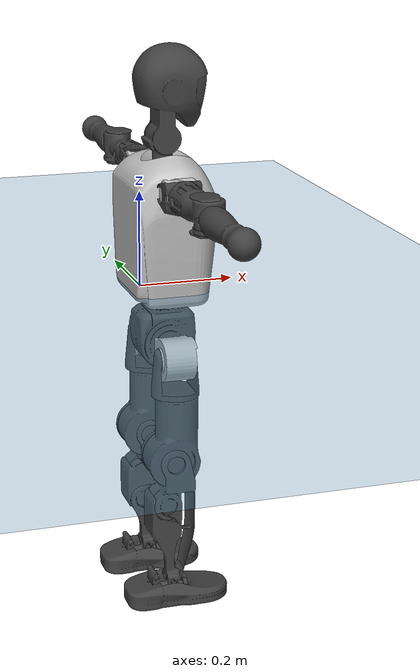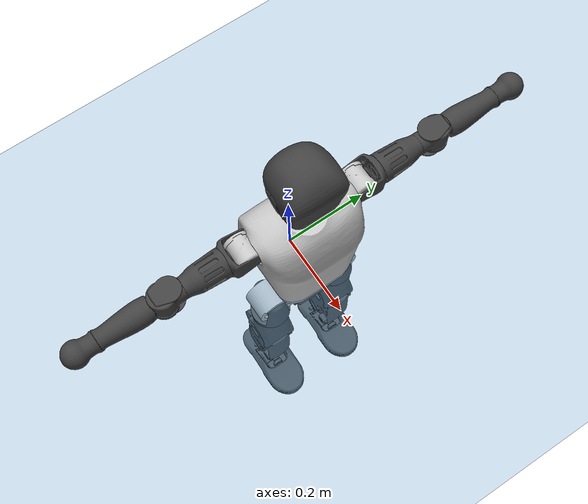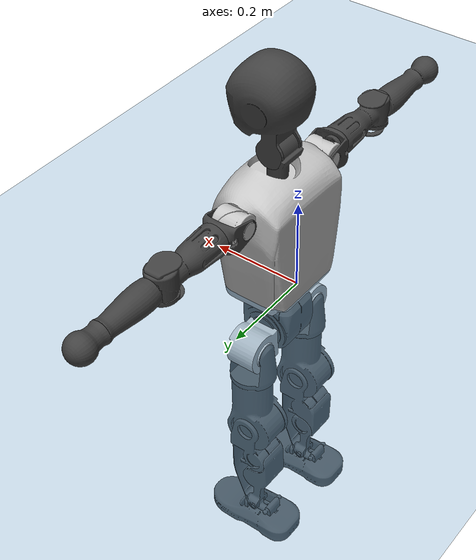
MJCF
<mujoco model="T1">
  <compiler angle="radian" assetdir="assets" balanceinertia="true" inertiafromgeom="false"/>

  <option timestep="0.005" density="1.2" viscosity="2e-05"/>

  <size nkey="1"/>

  <visual>
    <quality shadowsize="8192"/>
    <map shadowclip="0.5"/>
  </visual>

  <default>
    <default class="/">
      <joint armature="0.01" damping="0.01" frictionloss="0.1"/>
      <geom contype="0" conaffinity="0" group="1" solref="-1000 -80"/>
      <site size="0.01 0.005 0.005" group="5"/>
      <general forcelimited="true" biastype="affine" gainprm="25" biasprm="0 -25 -0.6"/>
      <default class="t1">
        <geom rgba="0.25 0.25 0.25 1"/>
        <default class="visual">
          <geom type="mesh" group="2"/>
        </default>
        <default class="collision">
          <geom group="3"/>
        </default>
        <default class="foot">
          <geom size="0.1115 0.05 0.015" type="box" condim="6" group="4" priority="1" solimp="0.015 1 0.015"/>
        </default>
        <default class="reward_collision_sphere">
          <geom group="5" rgba="1 0 0 1"/>
        </default>
      </default>
    </default>
  </default>

  <asset>
    <texture type="skybox" colorspace="auto" name="//unnamed_texture_0" builtin="gradient" rgb1="0.95 0.95 0.95" rgb2="0.95 0.95 0.95" width="100" height="600"/>
    <texture type="2d" colorspace="auto" name="texplane" builtin="checker" rgb1="0.345 0.575 0.748" rgb2="0.345 0.575 0.748" markrgb="1 1 1" width="512" height="512"/>
    <material name="MatPlane" class="/" texture="texplane" texuniform="true" texrepeat="2 2" specular="0.9"/>
    <mesh name="Trunk" class="/" file="Trunk.stl"/>
    <mesh name="H1" class="/" file="H1.stl"/>
    <mesh name="H2" class="/" file="H2.stl"/>
    <mesh name="AL1" class="/" file="AL1.stl"/>
    <mesh name="AL2" class="/" file="AL2.stl"/>
    <mesh name="AL3" class="/" file="AL3.stl"/>
    <mesh name="left_hand_link" class="/" file="left_hand_link.stl"/>
    <mesh name="AR1" class="/" file="AR1.stl"/>
    <mesh name="AR2" class="/" file="AR2.stl"/>
    <mesh name="AR3" class="/" file="AR3.stl"/>
    <mesh name="right_hand_link" class="/" file="right_hand_link.stl"/>
    <mesh name="Waist" class="/" file="Waist.stl"/>
    <mesh name="Hip_Pitch_Left" class="/" file="Hip_Pitch_Left.stl"/>
    <mesh name="Hip_Roll_Left" class="/" file="Hip_Roll_Left.stl"/>
    <mesh name="Hip_Yaw_Left" class="/" file="Hip_Yaw_Left.stl"/>
    <mesh name="Shank_Left" class="/" file="Shank_Left.stl"/>
    <mesh name="Ankle_Cross_Left" class="/" file="Ankle_Cross_Left.stl"/>
    <mesh name="left_foot_link" class="/" file="left_foot_link.stl"/>
    <mesh name="Hip_Pitch_Right" class="/" file="Hip_Pitch_Right.stl"/>
    <mesh name="Hip_Roll_Right" class="/" file="Hip_Roll_Right.stl"/>
    <mesh name="Hip_Yaw_Right" class="/" file="Hip_Yaw_Right.stl"/>
    <mesh name="Shank_Right" class="/" file="Shank_Right.stl"/>
    <mesh name="Ankle_Cross_Right" class="/" file="Ankle_Cross_Right.stl"/>
    <mesh name="right_foot_link" class="/" file="right_foot_link.stl"/>
  </asset>

  <worldbody>
    <geom name="floor" class="/" size="100 100 0.125" type="plane" group="0" material="MatPlane"/>
    <light name="toplight_shadow" class="/" pos="0 0 5" dir="0.0990148 0.0990148 -0.990148" type="directional" ambient="0.04 0.04 0.04" diffuse="0.55 0.55 0.55" specular="0.12 0.12 0.12"/>
    <light name="toplight_fill" class="/" pos="0 0 5" dir="0.0990148 0.0990148 -0.990148" type="directional" castshadow="false" ambient="0.04 0.04 0.04" diffuse="0.3 0.3 0.3" specular="0.08 0.08 0.08"/>
    <body name="trunk" childclass="t1" pos="-0.000518564 -7.30575e-05 0.00149938" quat="1 3.88902e-05 -0.000107908 -6.63564e-05">
      <inertial pos="0.0432626 -0.00120993 0.10732" quat="0.999963 0.000946504 -0.00843594 -0.00163556" mass="8.09747" diaginertia="0.0274835 0.0400692 0.0569904"/>
      <joint name="//unnamed_joint_0" type="free" armature="0" damping="0" frictionloss="0"/>
      <geom name="//unnamed_geom_1" class="visual" rgba="0.76 0.76 0.76 1" mesh="Trunk"/>
      <geom name="//unnamed_geom_2" class="collision" size="0.0670541 0.0894055 0.134108" pos="0.0473619 0 0.12162" type="box"/>
      <geom name="//unnamed_geom_3" class="reward_collision_sphere" size="0.102816" pos="0.0473619 0 0.10135"/>
      <geom name="//unnamed_geom_4" class="reward_collision_sphere" size="0.0134108" pos="0.0473619 0.0747404 0"/>
      <geom name="//unnamed_geom_5" class="reward_collision_sphere" size="0.0134108" pos="0.0473619 -0.0747404 0"/>
      <geom name="//unnamed_geom_6" class="reward_collision_sphere" size="0.0134108" pos="0.0473619 0.094085 0.18243"/>
      <geom name="//unnamed_geom_7" class="reward_collision_sphere" size="0.0134108" pos="0.0473619 -0.094085 0.18243"/>
      <site name="imu" pos="0.0123296 -0.0101279 -0.00399298" size="0.00894055"/>
      <camera name="track" pos="0 -1.7586 0" quat="0.707107 0.707107 0 0" mode="trackcom"/>
      <camera name="ego_camera" pos="0.0963026 0 0.42567" quat="-0.5 -0.5 0.5 0.5"/>
      <body name="H1" pos="0.0494654 -0.000611762 0.24654" quat="1 9.14215e-05 2.28516e-05 6.67404e-06">
        <inertial pos="-0.000367976 -0.000729739 0.0587816" quat="0.762427 -0.00923536 -0.000556776 0.647008" mass="0.321537" diaginertia="7.60332e-05 0.000117554 0.000164265"/>
        <joint name="AAHead_yaw" pos="0 0 0" axis="0.00124515 0.000843711 0.999999" stiffness="0.00913174" range="-1.58626 1.57758" armature="0.00861758" damping="0.00518181" frictionloss="0.0938253"/>
        <geom name="//unnamed_geom_8" class="visual" mesh="H1"/>
        <body name="H2" pos="-0.000582294 -0.00238336 0.0624394" quat="1 1.26464e-05 9.93374e-06 -2.20304e-05">
          <inertial pos="0.00782522 0.00301955 0.100374" quat="0.988748 0.107537 -0.0735392 -0.0735153" mass="0.467136" diaginertia="0.000619591 0.00102993 0.00185569"/>
          <joint name="Head_pitch" pos="0 0 0" axis="0.0036524 -0.999989 0.00282403" range="-1.22284 0.364038" armature="0.00809441" damping="0.00413422" frictionloss="0.0889755"/>
          <geom name="//unnamed_geom_9" class="visual" mesh="H2"/>
          <geom name="//unnamed_geom_10" class="collision" size="0.0715244" pos="0.00789366 0 0.111485"/>
          <geom name="//unnamed_geom_11" class="reward_collision_sphere" size="0.080465" pos="0.0157873 0 0.10135"/>
        </body>
      </body>
      <body name="AL1" pos="0.0461445 0.0949049 0.222183" quat="1 0.000124394 0.000294012 0.000269965">
        <inertial pos="-0.00133315 0.0388002 0.00215975" quat="0.50474 0.496426 -0.503902 0.494855" mass="0.381494" diaginertia="0.000419645 0.00067671 0.000309251"/>
        <joint name="Left_Shoulder_Pitch" pos="0 0 0" axis="0.00354986 0.999982 -0.00493131" range="-3.35096 1.20685" armature="0.0086541" damping="0.0106245" frictionloss="0.0884722"/>
        <geom name="//unnamed_geom_12" class="visual" rgba="0.76 0.76 0.76 1" mesh="AL1"/>
        <body name="AL2" pos="-0.000142218 0.0446619 -0.00115187" quat="0.999999 1.65203e-05 0.0013168 -0.000366386">
          <inertial pos="0.0020077 0.0330622 -0.00146953" quat="0.488048 0.511322 -0.487645 0.512407" mass="0.121285" diaginertia="0.000125571 0.000190088 0.000195532"/>
          <joint name="Left_Shoulder_Roll" pos="0 0 0" axis="-0.999987 -0.00271054 -0.00427413" range="-1.58488 1.74154" armature="0.00880275" damping="0" frictionloss="0.0937476"/>
          <geom name="//unnamed_geom_13" class="visual" mesh="AL2"/>
          <body name="AL3" pos="0.00114087 0.0560184 0.00110234" quat="0.999999 0.000376622 -0.000764385 0.00073979">
            <inertial pos="-0.000151394 0.0755576 -0.00038367" quat="0.708514 0.705653 -0.00437108 0.00656768" mass="0.74945" diaginertia="0.00402655 0.00695776 0.000686034"/>
            <joint name="Left_Elbow_Pitch" pos="0 0 0" axis="-0.000616828 -1 0.000656368" range="-2.26305 2.26868" armature="0.00911482" damping="0.012586" frictionloss="0.0889418"/>
            <geom name="//unnamed_geom_14" class="visual" mesh="AL3"/>
            <geom name="//unnamed_geom_15" class="collision" size="0.0268217 0.0670541" pos="0 0.043965 0" quat="0.707105 0.707108 0 0" type="cylinder"/>
            <geom name="//unnamed_geom_16" class="reward_collision_sphere" size="0.032186"/>
            <body name="left_hand_link" pos="0.000110134 0.132213 0.00165221" quat="0.999999 -0.000818677 0.000654562 -0.000461445">
              <inertial pos="-0.000439484 0.0969613 -0.00159563" quat="0.709986 0.704145 -0.00985908 -0.00154604" mass="0.226677" diaginertia="0.00241379 0.00415135 0.000223796"/>
              <joint name="Left_Elbow_Yaw" pos="0 0 0" axis="-0.012105 -0.00365139 0.99992" range="-2.4394 0.0273361" armature="0.00902647" damping="0.00743402" frictionloss="0.100397"/>
              <geom name="//unnamed_geom_17" class="visual" mesh="left_hand_link"/>
              <geom name="//unnamed_geom_18" class="collision" size="0.0268217 0.0782298" pos="0 0.114309 0" quat="0.707105 0.707108 0 0" type="cylinder"/>
              <geom name="//unnamed_geom_19" class="reward_collision_sphere" size="0.0447028"/>
              <geom name="//unnamed_geom_20" class="reward_collision_sphere" size="0.0312919" pos="0 0.0967229 0"/>
              <geom name="//unnamed_geom_21" class="reward_collision_sphere" size="0.0312919" pos="0 0.189049 0"/>
            </body>
          </body>
        </body>
      </body>
      <body name="AR1" pos="0.0430979 -0.0912079 0.221772" quat="1 0.000117734 0.000406819 -0.000216119">
        <inertial pos="-0.00041831 -0.0389708 -0.000158806" quat="0.502912 0.495028 -0.503991 0.498016" mass="0.374992" diaginertia="0.000419355 0.000684218 0.000310431"/>
        <joint name="Right_Shoulder_Pitch" pos="0 0 0" axis="0.000156476 -0.999997 0.00228683" stiffness="0.0144937" range="-1.1808 3.31366" armature="0.00878084" damping="0.0169595" frictionloss="0.0888741"/>
        <geom name="//unnamed_geom_22" class="visual" rgba="0.76 0.76 0.76 1" mesh="AR1"/>
        <body name="AR2" pos="-0.002558 -0.0388885 0.000399122" quat="1 -4.84425e-06 1.58123e-05 1.30361e-05">
          <inertial pos="0.0025628 -0.0342593 -0.000553453" quat="0.511454 0.487835 -0.51208 0.488063" mass="0.112863" diaginertia="0.000118286 0.000173928 0.000189065"/>
          <joint name="Right_Shoulder_Roll" pos="0 0 0" axis="-0.999991 -0.000537566 0.00410709" stiffness="0.00462072" range="-1.7441 1.52608" armature="0.00894506" damping="0.00424727" frictionloss="0.0797196"/>
          <geom name="//unnamed_geom_23" class="visual" mesh="AR2"/>
          <body name="AR3" pos="-2.57359e-05 -0.0507765 0.00169087" quat="1 7.36563e-05 1.93968e-05 8.87088e-05">
            <inertial pos="-0.000391069 -0.0740948 -0.000526666" quat="0.71409 0.699998 0.00635322 0.00610906" mass="0.731351" diaginertia="0.00395427 0.00677514 0.000671312"/>
            <joint name="Right_Elbow_Pitch" pos="0 0 0" axis="0.0016399 0.999999 -0.000148537" stiffness="0.00974659" range="-2.27017 2.27461" armature="0.00909756" damping="0.00917203" frictionloss="0.0998146"/>
            <geom name="//unnamed_geom_24" class="visual" mesh="AR3"/>
            <geom name="//unnamed_geom_25" class="collision" size="0.0268217 0.0670541" pos="0 -0.043965 0" quat="0.707105 0.707108 0 0" type="cylinder"/>
            <geom name="//unnamed_geom_26" class="reward_collision_sphere" size="0.032186"/>
            <body name="right_hand_link" pos="-0.00239498 -0.129238 -0.00152958" quat="1 1.08008e-05 1.16898e-05 -2.74195e-05">
              <inertial pos="-0.000890142 -0.0960884 0.0030266" quat="0.698973 0.715145 0.00135301 -0.00180018" mass="0.225796" diaginertia="0.00240767 0.00414138 0.000222337"/>
              <joint name="Right_Elbow_Yaw" pos="0 0 0" axis="0.000761292 -0.00115875 0.999999" range="-0.032688 2.42409" armature="0.0101487" damping="0.00555465" frictionloss="0.0887258"/>
              <geom name="//unnamed_geom_27" class="visual" mesh="right_hand_link"/>
              <geom name="//unnamed_geom_28" class="collision" size="0.0268217 0.0782298" pos="0 -0.114309 0" quat="0.707105 0.707108 0 0" type="cylinder"/>
              <geom name="//unnamed_geom_29" class="reward_collision_sphere" size="0.0447028"/>
              <geom name="//unnamed_geom_30" class="reward_collision_sphere" size="0.0312919" pos="0 -0.0967229 0"/>
              <geom name="//unnamed_geom_31" class="reward_collision_sphere" size="0.0312919" pos="0 -0.189049 0"/>
            </body>
          </body>
        </body>
      </body>
      <body name="Waist" pos="0.0494625 -0.0022166 -0.118396" quat="1 1.85158e-06 -1.58983e-05 -1.74214e-06">
        <inertial pos="0.00369596 -0.000282263 0.00753685" quat="0.983886 0.00054591 -0.178797 -0.000146502" mass="1.82433" diaginertia="0.00161161 0.00265354 0.00495421"/>
        <joint name="Waist" pos="0 0 0" axis="0.00224241 -0.0042249 0.999989" range="-1.52124 1.55594" armature="0.00818017" damping="0.0103252" frictionloss="0.0880392"/>
        <geom name="//unnamed_geom_32" class="visual" mesh="Waist"/>
        <body name="Hip_Pitch_Left" pos="-0.00156852 0.0944362 -0.000286827" quat="0.999999 0.00098268 0.000404968 -1.69231e-06">
          <inertial pos="0.000545712 -0.00423549 -0.0185731" quat="0.975264 0.220652 0.0129867 0.00201143" mass="0.730931" diaginertia="0.000549194 0.000786126 0.00132625"/>
          <joint name="Left_Hip_Pitch" pos="0 0 0" axis="0.00132244 0.999999 -0.00094852" stiffness="0.00372032" range="-1.79303 1.58431" armature="0.00888116" damping="0.00712167" frictionloss="0.0892971"/>
          <geom name="//unnamed_geom_33" class="visual" rgba="0.76 0.76 0.76 1" mesh="Hip_Pitch_Left"/>
          <body name="Hip_Roll_Left" pos="-0.000285154 0.000185295 -0.0206291" quat="1 0.000413702 0.000523899 0.000337794">
            <inertial pos="0.00169189 0.000219114 -0.0532444" quat="0.707059 -0.00597742 -0.00599012 0.707104" mass="0.276381" diaginertia="0.000531651 0.000778603 0.000538311"/>
            <joint name="Left_Hip_Roll" pos="0 0 0" axis="-0.999997 -0.00185208 -0.00140529" range="-1.58806 0.221542" armature="0.00905381" damping="0.00892598" frictionloss="0.0961739"/>
            <geom name="//unnamed_geom_34" class="visual" mesh="Hip_Roll_Left"/>
            <geom name="//unnamed_geom_35" class="reward_collision_sphere" size="0.049173"/>
            <body name="Hip_Yaw_Left" pos="0.00165009 -0.00122672 -0.0842958" quat="1 -0.000112192 -4.56816e-05 9.791e-05">
              <inertial pos="-0.00485785 -0.000152254 -0.0908774" quat="0.703967 -0.0268424 -0.0295397 0.70911" mass="1.55729" diaginertia="0.00788592 0.0128996 0.00276969"/>
              <joint name="Left_Hip_Yaw" pos="0 0 0" axis="-0.00282399 0.00676132 -0.999973" range="-1.00512 1.00177" armature="0.00905629" damping="0.0167166" frictionloss="0.0890856"/>
              <geom name="//unnamed_geom_36" class="visual" mesh="Hip_Yaw_Left"/>
              <geom name="//unnamed_geom_37" class="collision" size="0.0447028 0.0715244" type="cylinder"/>
              <body name="Shank_Left" pos="-0.00959557 0.000490387 -0.136042" quat="1 -4.62943e-06 -4.35912e-08 -9.91953e-07">
                <inertial pos="-0.00493361 -0.000295259 -0.125407" quat="0.997905 0.00218725 -0.026699 0.0588866" mass="1.22507" diaginertia="0.0106472 0.0183031 0.00198754"/>
                <joint name="Left_Knee_Pitch" pos="0 0 0" axis="0.00067455 0.999993 0.00365404" range="-0.0173457 2.33454" armature="0.00857013" damping="0.00910673" frictionloss="0.0979006"/>
                <geom name="//unnamed_geom_38" class="visual" mesh="Shank_Left"/>
                <geom name="//unnamed_geom_39" class="collision" size="0.0447028 0.0670541" pos="0 0 -0.12162" type="cylinder"/>
                <geom name="//unnamed_geom_40" class="reward_collision_sphere" size="0.0581136"/>
                <body name="Ankle_Cross_Left" pos="-0.000795117 1.42611e-05 -0.285001" quat="1 7.28025e-05 1.33479e-05 8.01637e-05">
                  <inertial pos="-0.0027253 -3.41833e-05 -0.0106406" quat="0.442291 0.547645 0.554109 0.444327" mass="0.0533677" diaginertia="9.34642e-06 1.37061e-05 1.24184e-05"/>
                  <joint name="Left_Ankle_Pitch" pos="0 0 0" axis="-0.000235282 1 -4.29468e-05" stiffness="0.00235789" range="-0.919103 0.35318" armature="0.0090151" damping="0.00407455" frictionloss="0.098372"/>
                  <geom name="//unnamed_geom_41" class="visual" mesh="Ankle_Cross_Left"/>
                  <body name="left_foot_link" pos="0.000583919 5.30906e-05 -0.01523" quat="1 -0.000105518 -8.6695e-05 -0.000397418">
                    <inertial pos="0.00069878 -0.00220021 -0.00997079" quat="-0.00119062 0.621296 -2.36992e-05 0.783575" mass="0.490498" diaginertia="0.00083315 0.00124823 0.0023021"/>
                    <joint name="Left_Ankle_Roll" pos="0 0 0" axis="-0.999998 -0.000339182 -0.00205523" range="-0.453425 0.456721" armature="0.00903363" damping="0.0149578" frictionloss="0.090252"/>
                    <geom name="//unnamed_geom_42" class="visual" mesh="left_foot_link"/>
                    <geom name="left_foot" class="foot" size="0.101424 0.0484499 0.013755" pos="0.00789366 0 -0.0152025"/>
                    <geom name="//unnamed_geom_44" class="reward_collision_sphere" size="0.0464909" pos="0.00789366 0 -0.0152025"/>
                    <geom name="//unnamed_geom_45" class="reward_collision_sphere" size="0.0268217" pos="0.0749897 -0.0202239 -0.0152025"/>
                    <geom name="//unnamed_geom_46" class="reward_collision_sphere" size="0.0268217" pos="-0.0552556 -0.0202239 -0.0152025"/>
                    <site name="left_foot" class="foot" pos="0.00789366 0 -0.0152025" size="0.00894055"/>
                  </body>
                </body>
              </body>
            </body>
          </body>
        </body>
        <body name="Hip_Pitch_Right" pos="0.0019587 -0.0923995 0.00131723" quat="1 6.11111e-05 -0.000317634 0.0003171">
          <inertial pos="0.000237699 0.00554959 -0.0157278" quat="0.973261 -0.228513 0.0233412 -0.000265069" mass="0.719752" diaginertia="0.000546559 0.000757309 0.00134321"/>
          <joint name="Right_Hip_Pitch" pos="0 0 0" axis="6.19721e-05 -0.999983 -0.00580389" range="-1.56655 1.79108" armature="0.00968394" damping="0.0124446" frictionloss="0.0897275"/>
          <geom name="//unnamed_geom_47" class="visual" rgba="0.76 0.76 0.76 1" mesh="Hip_Pitch_Right"/>
          <body name="Hip_Roll_Right" pos="8.60684e-06 0.000522311 -0.0200812" quat="0.999999 -0.000185419 0.00109475 -0.000836894">
            <inertial pos="0.00374535 -0.000983082 -0.0551605" quat="0.703693 -0.0118986 -0.00763741 0.710363" mass="0.270654" diaginertia="0.000519992 0.000775929 0.000543481"/>
            <joint name="Right_Hip_Roll" pos="0 0 0" axis="-0.999987 -0.00343209 -0.00378351" range="-0.206734 1.60272" armature="0.0091686" damping="0.00466604" frictionloss="0.0889911"/>
            <geom name="//unnamed_geom_48" class="visual" mesh="Hip_Roll_Right"/>
            <geom name="//unnamed_geom_49" class="reward_collision_sphere" size="0.049173"/>
            <body name="Hip_Yaw_Right" pos="0.000748415 -0.00122467 -0.0826237" quat="0.999999 -0.000715613 -0.000868527 0.000693013">
              <inertial pos="-0.00472754 0.000188297 -0.0914588" quat="0.715846 -0.029729 -0.0359365 0.696698" mass="1.57318" diaginertia="0.00831876 0.0140892 0.00283566"/>
              <joint name="Right_Hip_Yaw" pos="0 0 0" axis="-0.000470102 -0.000778693 -1" range="-1.00616 0.957451" armature="0.00909752" damping="0.0131055" frictionloss="0.079693"/>
              <geom name="//unnamed_geom_50" class="visual" mesh="Hip_Yaw_Right"/>
              <geom name="//unnamed_geom_51" class="collision" size="0.0447028 0.0715244" type="cylinder"/>
              <body name="Shank_Right" pos="-0.0128124 0.000312037 -0.136122" quat="1 1.41359e-07 0.000217413 -0.000944871">
                <inertial pos="-0.00281864 -8.9543e-05 -0.123625" quat="0.999261 -0.000119101 -0.0235484 -0.0303791" mass="1.32283" diaginertia="0.0108436 0.0179743 0.00207188"/>
                <joint name="Right_Knee_Pitch" pos="0 0 0" axis="-0.00341389 -0.999992 0.00203823" range="-2.31797 0.0100653" armature="0.00917554" damping="0.0099201" frictionloss="0.0865709"/>
                <geom name="//unnamed_geom_52" class="visual" mesh="Shank_Right"/>
                <geom name="//unnamed_geom_53" class="collision" size="0.0447028 0.0670541" pos="0 0 -0.12162" type="cylinder"/>
                <geom name="//unnamed_geom_54" class="reward_collision_sphere" size="0.0581136"/>
                <body name="Ankle_Cross_Right" pos="0.00164792 0.000226099 -0.284812" quat="0.999999 -0.000791343 -0.000151711 -0.00067323">
                  <inertial pos="-0.00306159 -0.00016214 -0.00792532" quat="0.44564 0.551784 0.549599 0.441453" mass="0.050178" diaginertia="8.76303e-06 1.33126e-05 1.19639e-05"/>
                  <joint name="Right_Ankle_Pitch" pos="0 0 0" axis="-0.00757293 -0.999906 0.0113888" range="-0.348403 0.849906" armature="0.00962744" damping="0.00272405" frictionloss="0.0782935"/>
                  <geom name="//unnamed_geom_55" class="visual" mesh="Ankle_Cross_Right"/>
                  <body name="right_foot_link" pos="0.00182107 -0.00149705 -0.0119568" quat="1 -8.501e-06 -4.71807e-06 1.24839e-05">
                    <inertial pos="-0.00104923 -0.000734449 -0.0110917" quat="-5.65431e-05 0.621347 -0.000674946 0.783535" mass="0.495474" diaginertia="0.000810209 0.00124327 0.00232948"/>
                    <joint name="Right_Ankle_Roll" pos="0 0 0" axis="-0.999954 0.00651931 -0.00703226" range="-0.388474 0.432181" armature="0.00832955" damping="0.00844624" frictionloss="0.0911942"/>
                    <geom name="//unnamed_geom_56" class="visual" mesh="right_foot_link"/>
                    <geom name="right_foot" class="foot" size="0.0925008 0.0451958 0.0136503" pos="0.00789366 0 -0.0152025"/>
                    <geom name="//unnamed_geom_58" class="reward_collision_sphere" size="0.0357622"/>
                    <geom name="//unnamed_geom_59" class="reward_collision_sphere" size="0.0268217" pos="0.00789366 0 -0.0152025"/>
                    <geom name="//unnamed_geom_60" class="reward_collision_sphere" size="0.0268217" pos="0.0749897 0.0202239 -0.0152025"/>
                    <geom name="//unnamed_geom_61" class="reward_collision_sphere" size="0.0268217" pos="-0.0552556 0.0202239 -0.0152025"/>
                    <site name="right_foot" class="foot" pos="0.00789366 0 -0.0152025" size="0.00894055"/>
                  </body>
                </body>
              </body>
            </body>
          </body>
        </body>
      </body>
    </body>
  </worldbody>

  <contact>
    <pair class="/" geom1="floor" geom2="left_foot" name="//unnamed_contact_0"/>
    <pair class="/" geom1="floor" geom2="right_foot" name="//unnamed_contact_1"/>
  </contact>

  <actuator>
    <general name="AAHead_yaw" class="/" joint="AAHead_yaw" forcerange="-6.36479 6.36479" gainprm="23.259" biasprm="0 -23.259 -0.512432"/>
    <general name="Head_pitch" class="/" joint="Head_pitch" forcerange="-6.26806 6.26806" gainprm="23.259" biasprm="0 -23.259 -0.512432"/>
    <general name="Left_Shoulder_Pitch" class="/" joint="Left_Shoulder_Pitch" forcerange="-16.0679 16.0679" gainprm="23.259" biasprm="0 -23.259 -0.512432"/>
    <general name="Left_Shoulder_Roll" class="/" joint="Left_Shoulder_Roll" forcerange="-16.1651 16.1651" gainprm="23.259" biasprm="0 -23.259 -0.512432"/>
    <general name="Left_Elbow_Pitch" class="/" joint="Left_Elbow_Pitch" forcerange="-17.2383 17.2383" gainprm="23.259" biasprm="0 -23.259 -0.512432"/>
    <general name="Left_Elbow_Yaw" class="/" joint="Left_Elbow_Yaw" forcerange="-16.4509 16.4509" gainprm="23.259" biasprm="0 -23.259 -0.512432"/>
    <general name="Right_Shoulder_Pitch" class="/" joint="Right_Shoulder_Pitch" forcerange="-16.4677 16.4677" gainprm="23.259" biasprm="0 -23.259 -0.512432"/>
    <general name="Right_Shoulder_Roll" class="/" joint="Right_Shoulder_Roll" forcerange="-16.1249 16.1249" gainprm="23.259" biasprm="0 -23.259 -0.512432"/>
    <general name="Right_Elbow_Pitch" class="/" joint="Right_Elbow_Pitch" forcerange="-16.7165 16.7165" gainprm="23.259" biasprm="0 -23.259 -0.512432"/>
    <general name="Right_Elbow_Yaw" class="/" joint="Right_Elbow_Yaw" forcerange="-17.1371 17.1371" gainprm="23.259" biasprm="0 -23.259 -0.512432"/>
    <general name="Waist" class="/" joint="Waist" forcerange="-26.516 26.516" gainprm="23.259" biasprm="0 -23.259 -0.512432"/>
    <general name="Left_Hip_Pitch" class="/" joint="Left_Hip_Pitch" forcerange="-36.3596 36.3596" gainprm="23.259" biasprm="0 -23.259 -0.512432"/>
    <general name="Left_Hip_Roll" class="/" joint="Left_Hip_Roll" forcerange="-26.0517 26.0517" gainprm="23.259" biasprm="0 -23.259 -0.512432"/>
    <general name="Left_Hip_Yaw" class="/" joint="Left_Hip_Yaw" forcerange="-25.7806 25.7806" gainprm="23.259" biasprm="0 -23.259 -0.512432"/>
    <general name="Left_Knee_Pitch" class="/" joint="Left_Knee_Pitch" forcerange="-57.0157 57.0157" gainprm="23.259" biasprm="0 -23.259 -0.512432"/>
    <general name="Left_Ankle_Pitch" class="/" joint="Left_Ankle_Pitch" forcerange="-17.5878 17.5878" gainprm="23.259" biasprm="0 -23.259 -0.512432"/>
    <general name="Left_Ankle_Roll" class="/" joint="Left_Ankle_Roll" forcerange="-13.392 13.392" gainprm="23.259" biasprm="0 -23.259 -0.512432"/>
    <general name="Right_Hip_Pitch" class="/" joint="Right_Hip_Pitch" forcerange="-43.7941 43.7941" gainprm="23.259" biasprm="0 -23.259 -0.512432"/>
    <general name="Right_Hip_Roll" class="/" joint="Right_Hip_Roll" forcerange="-25.8972 25.8972" gainprm="23.259" biasprm="0 -23.259 -0.512432"/>
    <general name="Right_Hip_Yaw" class="/" joint="Right_Hip_Yaw" forcerange="-25.7612 25.7612" gainprm="23.259" biasprm="0 -23.259 -0.512432"/>
    <general name="Right_Knee_Pitch" class="/" joint="Right_Knee_Pitch" forcerange="-54.4168 54.4168" gainprm="23.259" biasprm="0 -23.259 -0.512432"/>
    <general name="Right_Ankle_Pitch" class="/" joint="Right_Ankle_Pitch" forcerange="-18.2434 18.2434" gainprm="23.259" biasprm="0 -23.259 -0.512432"/>
    <general name="Right_Ankle_Roll" class="/" joint="Right_Ankle_Roll" forcerange="-12.2435 12.2435" gainprm="23.259" biasprm="0 -23.259 -0.512432"/>
  </actuator>

  <sensor>
    <gyro site="imu" name="imu_angular_velocity"/>
    <velocimeter site="imu" name="imu_linear_velocity"/>
    <framelinvel objtype="site" objname="left_foot" name="left_foot_global_linear_velocity"/>
    <framelinvel objtype="site" objname="right_foot" name="right_foot_global_linear_velocity"/>
  </sensor>

  <keyframe>
    <key name="home" qpos="0 0 0.6385 1 0 0 0 0 0 0 1.4 0 -0.4 0 -1.4 0 0.4 0 -0.4 0 0 0.8 -0.4 0 0.4 0 0 -0.8 0.4 0"/>
  </keyframe>
</mujoco>
